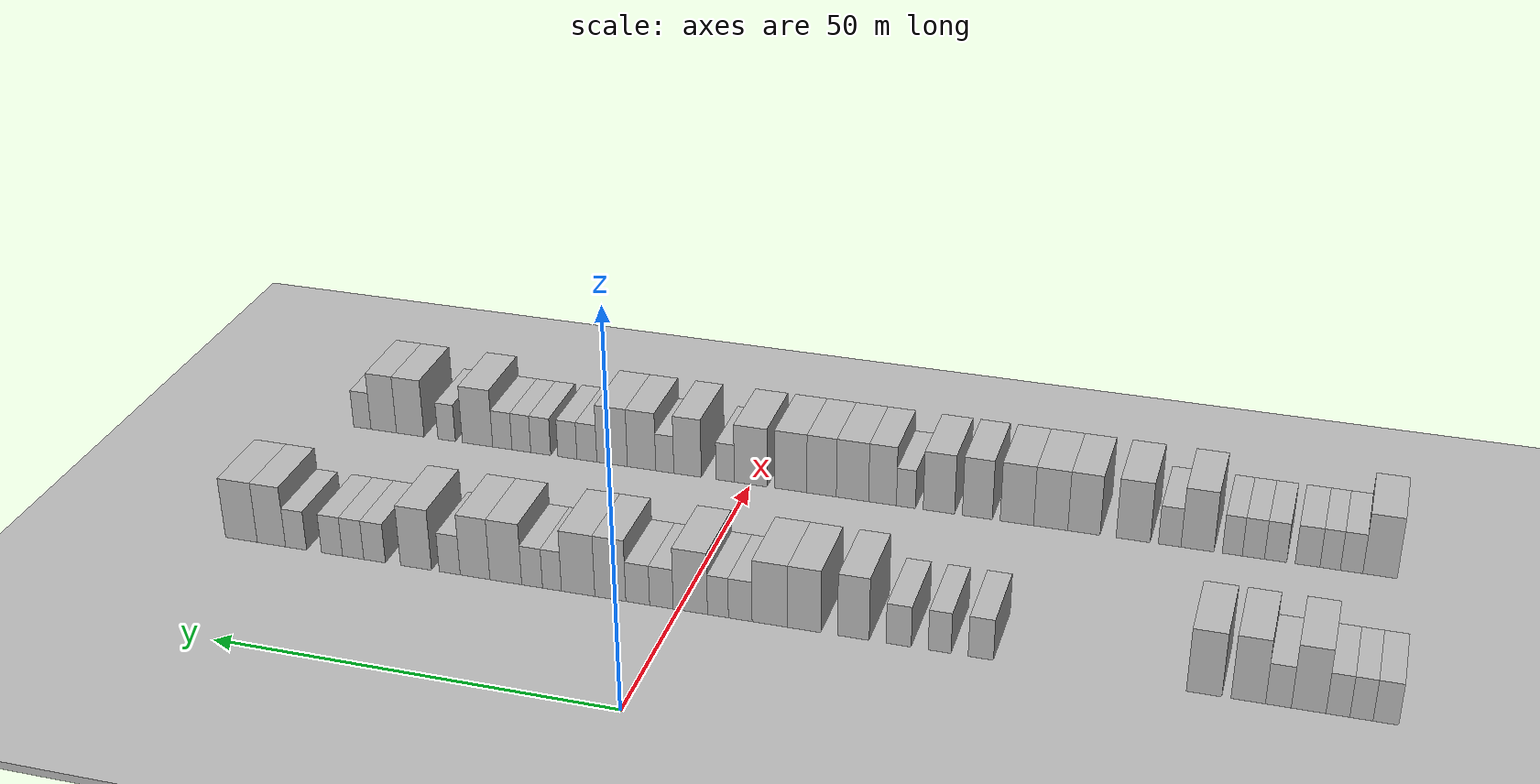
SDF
<sdf version="1.6">
 <world name="default">
  <include><name>ground_plane_1</name><uri>model://HANNAS_ground_plane</uri></include>
  <include>
   <name>ground_plane_2</name>
   <uri>model://HANNAS_ground_plane</uri>
   <pose>100 0 0  0 0 0</pose>
  </include>
  <model name="building_34">
   <static>1</static>
   <pose>25.0000 -81.9005 0 0.000000 0.000000 0.000000</pose>
   <link name="link">
    <pose>0 0 3.00 0 0 0</pose>
    <collision name="collision"><geometry><box><size>10.0000 2.7639 6.0000</size></box></geometry></collision>
    <visual name="visual">
     <cast_shadows>0</cast_shadows>
     <geometry><box><size>10.0000 2.7639 6.0000</size></box></geometry>
     <material>
      <script>
       <uri>model://HANNAS_wall/materials/scripts</uri>
       <uri>model://HANNAS_wall/materials/textures</uri>
       <name>vrc/HANNAS_wall</name>
      </script>
     </material>
    </visual>
   </link>
  </model>
  <model name="building_35">
   <static>1</static>
   <pose>25.0000 -79.2666 0 0.000000 0.000000 0.000000</pose>
   <link name="link">
    <pose>0 0 3.00 0 0 0</pose>
    <collision name="collision"><geometry><box><size>10.0000 2.5040 6.0000</size></box></geometry></collision>
    <visual name="visual">
     <cast_shadows>0</cast_shadows>
     <geometry><box><size>10.0000 2.5040 6.0000</size></box></geometry>
     <material>
      <script>
       <uri>model://HANNAS_wall/materials/scripts</uri>
       <uri>model://HANNAS_wall/materials/textures</uri>
       <name>vrc/HANNAS_wall</name>
      </script>
     </material>
    </visual>
   </link>
  </model>
  <model name="building_36">
   <static>1</static>
   <pose>25.0000 -76.7242 0 0.000000 0.000000 0.000000</pose>
   <link name="link">
    <pose>0 0 3.00 0 0 0</pose>
    <collision name="collision"><geometry><box><size>10.0000 2.5807 6.0000</size></box></geometry></collision>
    <visual name="visual">
     <cast_shadows>0</cast_shadows>
     <geometry><box><size>10.0000 2.5807 6.0000</size></box></geometry>
     <material>
      <script>
       <uri>model://HANNAS_wall/materials/scripts</uri>
       <uri>model://HANNAS_wall/materials/textures</uri>
       <name>vrc/HANNAS_wall</name>
      </script>
     </material>
    </visual>
   </link>
  </model>
  <model name="building_37">
   <static>1</static>
   <pose>25.0000 -73.5472 0 0.000000 0.000000 0.000000</pose>
   <link name="link">
    <pose>0 0 4.50 0 0 0</pose>
    <collision name="collision"><geometry><box><size>10.0000 3.7734 9.0000</size></box></geometry></collision>
    <visual name="visual">
     <cast_shadows>0</cast_shadows>
     <geometry><box><size>10.0000 3.7734 9.0000</size></box></geometry>
     <material>
      <script>
       <uri>model://HANNAS_wall/materials/scripts</uri>
       <uri>model://HANNAS_wall/materials/textures</uri>
       <name>vrc/HANNAS_wall</name>
      </script>
     </material>
    </visual>
   </link>
  </model>
  <model name="building_38">
   <static>1</static>
   <pose>25.0000 -70.2390 0 0.000000 0.000000 0.000000</pose>
   <link name="link">
    <pose>0 0 3.00 0 0 0</pose>
    <collision name="collision"><geometry><box><size>10.0000 2.8429 6.0000</size></box></geometry></collision>
    <visual name="visual">
     <cast_shadows>0</cast_shadows>
     <geometry><box><size>10.0000 2.8429 6.0000</size></box></geometry>
     <material>
      <script>
       <uri>model://HANNAS_wall/materials/scripts</uri>
       <uri>model://HANNAS_wall/materials/textures</uri>
       <name>vrc/HANNAS_wall</name>
      </script>
     </material>
    </visual>
   </link>
  </model>
  <model name="building_39">
   <static>1</static>
   <pose>25.0000 -66.9153 0 0.000000 0.000000 0.000000</pose>
   <link name="link">
    <pose>0 0 4.50 0 0 0</pose>
    <collision name="collision"><geometry><box><size>10.0000 3.8045 9.0000</size></box></geometry></collision>
    <visual name="visual">
     <cast_shadows>0</cast_shadows>
     <geometry><box><size>10.0000 3.8045 9.0000</size></box></geometry>
     <material>
      <script>
       <uri>model://HANNAS_wall/materials/scripts</uri>
       <uri>model://HANNAS_wall/materials/textures</uri>
       <name>vrc/HANNAS_wall</name>
      </script>
     </material>
    </visual>
   </link>
  </model>
  <model name="building_40">
   <static>1</static>
   <pose>25.0000 -62.0282 0 0.000000 0.000000 0.000000</pose>
   <link name="link">
    <pose>0 0 4.50 0 0 0</pose>
    <collision name="collision"><geometry><box><size>10.0000 3.9697 9.0000</size></box></geometry></collision>
    <visual name="visual">
     <cast_shadows>0</cast_shadows>
     <geometry><box><size>10.0000 3.9697 9.0000</size></box></geometry>
     <material>
      <script>
       <uri>model://HANNAS_wall/materials/scripts</uri>
       <uri>model://HANNAS_wall/materials/textures</uri>
       <name>vrc/HANNAS_wall</name>
      </script>
     </material>
    </visual>
   </link>
  </model>
  <model name="building_41">
   <static>1</static>
   <pose>25.0000 -36.5963 0 0.000000 0.000000 0.000000</pose>
   <link name="link">
    <pose>0 0 3.00 0 0 0</pose>
    <collision name="collision"><geometry><box><size>10.0000 2.9647 6.0000</size></box></geometry></collision>
    <visual name="visual">
     <cast_shadows>0</cast_shadows>
     <geometry><box><size>10.0000 2.9647 6.0000</size></box></geometry>
     <material>
      <script>
       <uri>model://HANNAS_wall/materials/scripts</uri>
       <uri>model://HANNAS_wall/materials/textures</uri>
       <name>vrc/HANNAS_wall</name>
      </script>
     </material>
    </visual>
   </link>
  </model>
  <model name="building_42">
   <static>1</static>
   <pose>25.0000 -31.7684 0 0.000000 0.000000 0.000000</pose>
   <link name="link">
    <pose>0 0 3.00 0 0 0</pose>
    <collision name="collision"><geometry><box><size>10.0000 2.6911 6.0000</size></box></geometry></collision>
    <visual name="visual">
     <cast_shadows>0</cast_shadows>
     <geometry><box><size>10.0000 2.6911 6.0000</size></box></geometry>
     <material>
      <script>
       <uri>model://HANNAS_wall/materials/scripts</uri>
       <uri>model://HANNAS_wall/materials/textures</uri>
       <name>vrc/HANNAS_wall</name>
      </script>
     </material>
    </visual>
   </link>
  </model>
  <model name="building_43">
   <static>1</static>
   <pose>25.0000 -26.9302 0 0.000000 0.000000 0.000000</pose>
   <link name="link">
    <pose>0 0 3.00 0 0 0</pose>
    <collision name="collision"><geometry><box><size>10.0000 2.9854 6.0000</size></box></geometry></collision>
    <visual name="visual">
     <cast_shadows>0</cast_shadows>
     <geometry><box><size>10.0000 2.9854 6.0000</size></box></geometry>
     <material>
      <script>
       <uri>model://HANNAS_wall/materials/scripts</uri>
       <uri>model://HANNAS_wall/materials/textures</uri>
       <name>vrc/HANNAS_wall</name>
      </script>
     </material>
    </visual>
   </link>
  </model>
  <model name="building_44">
   <static>1</static>
   <pose>25.0000 -21.5450 0 0.000000 0.000000 0.000000</pose>
   <link name="link">
    <pose>0 0 4.50 0 0 0</pose>
    <collision name="collision"><geometry><box><size>10.0000 3.7849 9.0000</size></box></geometry></collision>
    <visual name="visual">
     <cast_shadows>0</cast_shadows>
     <geometry><box><size>10.0000 3.7849 9.0000</size></box></geometry>
     <material>
      <script>
       <uri>model://HANNAS_wall/materials/scripts</uri>
       <uri>model://HANNAS_wall/materials/textures</uri>
       <name>vrc/HANNAS_wall</name>
      </script>
     </material>
    </visual>
   </link>
  </model>
  <model name="building_45">
   <static>1</static>
   <pose>25.0000 -15.6353 0 0.000000 0.000000 0.000000</pose>
   <link name="link">
    <pose>0 0 4.50 0 0 0</pose>
    <collision name="collision"><geometry><box><size>10.0000 4.0346 9.0000</size></box></geometry></collision>
    <visual name="visual">
     <cast_shadows>0</cast_shadows>
     <geometry><box><size>10.0000 4.0346 9.0000</size></box></geometry>
     <material>
      <script>
       <uri>model://HANNAS_wall/materials/scripts</uri>
       <uri>model://HANNAS_wall/materials/textures</uri>
       <name>vrc/HANNAS_wall</name>
      </script>
     </material>
    </visual>
   </link>
  </model>
  <model name="building_46">
   <static>1</static>
   <pose>25.0000 -11.4569 0 0.000000 0.000000 0.000000</pose>
   <link name="link">
    <pose>0 0 4.50 0 0 0</pose>
    <collision name="collision"><geometry><box><size>10.0000 4.3222 9.0000</size></box></geometry></collision>
    <visual name="visual">
     <cast_shadows>0</cast_shadows>
     <geometry><box><size>10.0000 4.3222 9.0000</size></box></geometry>
     <material>
      <script>
       <uri>model://HANNAS_wall/materials/scripts</uri>
       <uri>model://HANNAS_wall/materials/textures</uri>
       <name>vrc/HANNAS_wall</name>
      </script>
     </material>
    </visual>
   </link>
  </model>
  <model name="building_47">
   <static>1</static>
   <pose>25.0000 -7.8419 0 0.000000 0.000000 0.000000</pose>
   <link name="link">
    <pose>0 0 3.00 0 0 0</pose>
    <collision name="collision"><geometry><box><size>10.0000 2.9079 6.0000</size></box></geometry></collision>
    <visual name="visual">
     <cast_shadows>0</cast_shadows>
     <geometry><box><size>10.0000 2.9079 6.0000</size></box></geometry>
     <material>
      <script>
       <uri>model://HANNAS_wall/materials/scripts</uri>
       <uri>model://HANNAS_wall/materials/textures</uri>
       <name>vrc/HANNAS_wall</name>
      </script>
     </material>
    </visual>
   </link>
  </model>
  <model name="building_48">
   <static>1</static>
   <pose>25.0000 -5.0997 0 0.000000 0.000000 0.000000</pose>
   <link name="link">
    <pose>0 0 3.00 0 0 0</pose>
    <collision name="collision"><geometry><box><size>10.0000 2.5764 6.0000</size></box></geometry></collision>
    <visual name="visual">
     <cast_shadows>0</cast_shadows>
     <geometry><box><size>10.0000 2.5764 6.0000</size></box></geometry>
     <material>
      <script>
       <uri>model://HANNAS_wall/materials/scripts</uri>
       <uri>model://HANNAS_wall/materials/textures</uri>
       <name>vrc/HANNAS_wall</name>
      </script>
     </material>
    </visual>
   </link>
  </model>
  <model name="building_49">
   <static>1</static>
   <pose>25.0000 -1.6873 0 0.000000 0.000000 0.000000</pose>
   <link name="link">
    <pose>0 0 4.50 0 0 0</pose>
    <collision name="collision"><geometry><box><size>10.0000 4.2484 9.0000</size></box></geometry></collision>
    <visual name="visual">
     <cast_shadows>0</cast_shadows>
     <geometry><box><size>10.0000 4.2484 9.0000</size></box></geometry>
     <material>
      <script>
       <uri>model://HANNAS_wall/materials/scripts</uri>
       <uri>model://HANNAS_wall/materials/textures</uri>
       <name>vrc/HANNAS_wall</name>
      </script>
     </material>
    </visual>
   </link>
  </model>
  <model name="building_50">
   <static>1</static>
   <pose>25.0000 1.9094 0 0.000000 0.000000 0.000000</pose>
   <link name="link">
    <pose>0 0 3.00 0 0 0</pose>
    <collision name="collision"><geometry><box><size>10.0000 2.9451 6.0000</size></box></geometry></collision>
    <visual name="visual">
     <cast_shadows>0</cast_shadows>
     <geometry><box><size>10.0000 2.9451 6.0000</size></box></geometry>
     <material>
      <script>
       <uri>model://HANNAS_wall/materials/scripts</uri>
       <uri>model://HANNAS_wall/materials/textures</uri>
       <name>vrc/HANNAS_wall</name>
      </script>
     </material>
    </visual>
   </link>
  </model>
  <model name="building_51">
   <static>1</static>
   <pose>25.0000 4.8736 0 0.000000 0.000000 0.000000</pose>
   <link name="link">
    <pose>0 0 3.00 0 0 0</pose>
    <collision name="collision"><geometry><box><size>10.0000 2.9833 6.0000</size></box></geometry></collision>
    <visual name="visual">
     <cast_shadows>0</cast_shadows>
     <geometry><box><size>10.0000 2.9833 6.0000</size></box></geometry>
     <material>
      <script>
       <uri>model://HANNAS_wall/materials/scripts</uri>
       <uri>model://HANNAS_wall/materials/textures</uri>
       <name>vrc/HANNAS_wall</name>
      </script>
     </material>
    </visual>
   </link>
  </model>
  <model name="building_52">
   <static>1</static>
   <pose>25.0000 8.3156 0 0.000000 0.000000 0.000000</pose>
   <link name="link">
    <pose>0 0 4.50 0 0 0</pose>
    <collision name="collision"><geometry><box><size>10.0000 3.9007 9.0000</size></box></geometry></collision>
    <visual name="visual">
     <cast_shadows>0</cast_shadows>
     <geometry><box><size>10.0000 3.9007 9.0000</size></box></geometry>
     <material>
      <script>
       <uri>model://HANNAS_wall/materials/scripts</uri>
       <uri>model://HANNAS_wall/materials/textures</uri>
       <name>vrc/HANNAS_wall</name>
      </script>
     </material>
    </visual>
   </link>
  </model>
  <model name="building_53">
   <static>1</static>
   <pose>25.0000 12.3858 0 0.000000 0.000000 0.000000</pose>
   <link name="link">
    <pose>0 0 4.50 0 0 0</pose>
    <collision name="collision"><geometry><box><size>10.0000 4.2398 9.0000</size></box></geometry></collision>
    <visual name="visual">
     <cast_shadows>0</cast_shadows>
     <geometry><box><size>10.0000 4.2398 9.0000</size></box></geometry>
     <material>
      <script>
       <uri>model://HANNAS_wall/materials/scripts</uri>
       <uri>model://HANNAS_wall/materials/textures</uri>
       <name>vrc/HANNAS_wall</name>
      </script>
     </material>
    </visual>
   </link>
  </model>
  <model name="building_54">
   <static>1</static>
   <pose>25.0000 15.7181 0 0.000000 0.000000 0.000000</pose>
   <link name="link">
    <pose>0 0 3.00 0 0 0</pose>
    <collision name="collision"><geometry><box><size>10.0000 2.4247 6.0000</size></box></geometry></collision>
    <visual name="visual">
     <cast_shadows>0</cast_shadows>
     <geometry><box><size>10.0000 2.4247 6.0000</size></box></geometry>
     <material>
      <script>
       <uri>model://HANNAS_wall/materials/scripts</uri>
       <uri>model://HANNAS_wall/materials/textures</uri>
       <name>vrc/HANNAS_wall</name>
      </script>
     </material>
    </visual>
   </link>
  </model>
  <model name="building_55">
   <static>1</static>
   <pose>25.0000 18.2639 0 0.000000 0.000000 0.000000</pose>
   <link name="link">
    <pose>0 0 3.00 0 0 0</pose>
    <collision name="collision"><geometry><box><size>10.0000 2.6669 6.0000</size></box></geometry></collision>
    <visual name="visual">
     <cast_shadows>0</cast_shadows>
     <geometry><box><size>10.0000 2.6669 6.0000</size></box></geometry>
     <material>
      <script>
       <uri>model://HANNAS_wall/materials/scripts</uri>
       <uri>model://HANNAS_wall/materials/textures</uri>
       <name>vrc/HANNAS_wall</name>
      </script>
     </material>
    </visual>
   </link>
  </model>
  <model name="building_56">
   <static>1</static>
   <pose>25.0000 21.6509 0 0.000000 0.000000 0.000000</pose>
   <link name="link">
    <pose>0 0 4.50 0 0 0</pose>
    <collision name="collision"><geometry><box><size>10.0000 4.1072 9.0000</size></box></geometry></collision>
    <visual name="visual">
     <cast_shadows>0</cast_shadows>
     <geometry><box><size>10.0000 4.1072 9.0000</size></box></geometry>
     <material>
      <script>
       <uri>model://HANNAS_wall/materials/scripts</uri>
       <uri>model://HANNAS_wall/materials/textures</uri>
       <name>vrc/HANNAS_wall</name>
      </script>
     </material>
    </visual>
   </link>
  </model>
  <model name="building_57">
   <static>1</static>
   <pose>25.0000 25.6340 0 0.000000 0.000000 0.000000</pose>
   <link name="link">
    <pose>0 0 4.50 0 0 0</pose>
    <collision name="collision"><geometry><box><size>10.0000 3.8590 9.0000</size></box></geometry></collision>
    <visual name="visual">
     <cast_shadows>0</cast_shadows>
     <geometry><box><size>10.0000 3.8590 9.0000</size></box></geometry>
     <material>
      <script>
       <uri>model://HANNAS_wall/materials/scripts</uri>
       <uri>model://HANNAS_wall/materials/textures</uri>
       <name>vrc/HANNAS_wall</name>
      </script>
     </material>
    </visual>
   </link>
  </model>
  <model name="building_58">
   <static>1</static>
   <pose>25.0000 28.9317 0 0.000000 0.000000 0.000000</pose>
   <link name="link">
    <pose>0 0 3.00 0 0 0</pose>
    <collision name="collision"><geometry><box><size>10.0000 2.7363 6.0000</size></box></geometry></collision>
    <visual name="visual">
     <cast_shadows>0</cast_shadows>
     <geometry><box><size>10.0000 2.7363 6.0000</size></box></geometry>
     <material>
      <script>
       <uri>model://HANNAS_wall/materials/scripts</uri>
       <uri>model://HANNAS_wall/materials/textures</uri>
       <name>vrc/HANNAS_wall</name>
      </script>
     </material>
    </visual>
   </link>
  </model>
  <model name="building_59">
   <static>1</static>
   <pose>25.0000 33.3434 0 0.000000 0.000000 0.000000</pose>
   <link name="link">
    <pose>0 0 4.50 0 0 0</pose>
    <collision name="collision"><geometry><box><size>10.0000 4.0870 9.0000</size></box></geometry></collision>
    <visual name="visual">
     <cast_shadows>0</cast_shadows>
     <geometry><box><size>10.0000 4.0870 9.0000</size></box></geometry>
     <material>
      <script>
       <uri>model://HANNAS_wall/materials/scripts</uri>
       <uri>model://HANNAS_wall/materials/textures</uri>
       <name>vrc/HANNAS_wall</name>
      </script>
     </material>
    </visual>
   </link>
  </model>
  <model name="building_60">
   <static>1</static>
   <pose>25.0000 38.8239 0 0.000000 0.000000 0.000000</pose>
   <link name="link">
    <pose>0 0 3.00 0 0 0</pose>
    <collision name="collision"><geometry><box><size>10.0000 2.8741 6.0000</size></box></geometry></collision>
    <visual name="visual">
     <cast_shadows>0</cast_shadows>
     <geometry><box><size>10.0000 2.8741 6.0000</size></box></geometry>
     <material>
      <script>
       <uri>model://HANNAS_wall/materials/scripts</uri>
       <uri>model://HANNAS_wall/materials/textures</uri>
       <name>vrc/HANNAS_wall</name>
      </script>
     </material>
    </visual>
   </link>
  </model>
  <model name="building_61">
   <static>1</static>
   <pose>25.0000 41.6775 0 0.000000 0.000000 0.000000</pose>
   <link name="link">
    <pose>0 0 3.00 0 0 0</pose>
    <collision name="collision"><geometry><box><size>10.0000 2.8331 6.0000</size></box></geometry></collision>
    <visual name="visual">
     <cast_shadows>0</cast_shadows>
     <geometry><box><size>10.0000 2.8331 6.0000</size></box></geometry>
     <material>
      <script>
       <uri>model://HANNAS_wall/materials/scripts</uri>
       <uri>model://HANNAS_wall/materials/textures</uri>
       <name>vrc/HANNAS_wall</name>
      </script>
     </material>
    </visual>
   </link>
  </model>
  <model name="building_62">
   <static>1</static>
   <pose>25.0000 44.5064 0 0.000000 0.000000 0.000000</pose>
   <link name="link">
    <pose>0 0 3.00 0 0 0</pose>
    <collision name="collision"><geometry><box><size>10.0000 2.8246 6.0000</size></box></geometry></collision>
    <visual name="visual">
     <cast_shadows>0</cast_shadows>
     <geometry><box><size>10.0000 2.8246 6.0000</size></box></geometry>
     <material>
      <script>
       <uri>model://HANNAS_wall/materials/scripts</uri>
       <uri>model://HANNAS_wall/materials/textures</uri>
       <name>vrc/HANNAS_wall</name>
      </script>
     </material>
    </visual>
   </link>
  </model>
  <model name="building_63">
   <static>1</static>
   <pose>25.0000 49.3400 0 0.000000 0.000000 0.000000</pose>
   <link name="link">
    <pose>0 0 3.00 0 0 0</pose>
    <collision name="collision"><geometry><box><size>10.0000 2.8425 6.0000</size></box></geometry></collision>
    <visual name="visual">
     <cast_shadows>0</cast_shadows>
     <geometry><box><size>10.0000 2.8425 6.0000</size></box></geometry>
     <material>
      <script>
       <uri>model://HANNAS_wall/materials/scripts</uri>
       <uri>model://HANNAS_wall/materials/textures</uri>
       <name>vrc/HANNAS_wall</name>
      </script>
     </material>
    </visual>
   </link>
  </model>
  <model name="building_64">
   <static>1</static>
   <pose>25.0000 52.6795 0 0.000000 0.000000 0.000000</pose>
   <link name="link">
    <pose>0 0 4.50 0 0 0</pose>
    <collision name="collision"><geometry><box><size>10.0000 3.8364 9.0000</size></box></geometry></collision>
    <visual name="visual">
     <cast_shadows>0</cast_shadows>
     <geometry><box><size>10.0000 3.8364 9.0000</size></box></geometry>
     <material>
      <script>
       <uri>model://HANNAS_wall/materials/scripts</uri>
       <uri>model://HANNAS_wall/materials/textures</uri>
       <name>vrc/HANNAS_wall</name>
      </script>
     </material>
    </visual>
   </link>
  </model>
  <model name="building_65">
   <static>1</static>
   <pose>25.0000 56.7754 0 0.000000 0.000000 0.000000</pose>
   <link name="link">
    <pose>0 0 4.50 0 0 0</pose>
    <collision name="collision"><geometry><box><size>10.0000 4.3555 9.0000</size></box></geometry></collision>
    <visual name="visual">
     <cast_shadows>0</cast_shadows>
     <geometry><box><size>10.0000 4.3555 9.0000</size></box></geometry>
     <material>
      <script>
       <uri>model://HANNAS_wall/materials/scripts</uri>
       <uri>model://HANNAS_wall/materials/textures</uri>
       <name>vrc/HANNAS_wall</name>
      </script>
     </material>
    </visual>
   </link>
  </model>
  <model name="building_131">
   <static>1</static>
   <pose>55.0000 -79.6009 0 0.000000 0.000000 0.000000</pose>
   <link name="link">
    <pose>0 0 4.50 0 0 0</pose>
    <collision name="collision"><geometry><box><size>10.0000 4.0662 9.0000</size></box></geometry></collision>
    <visual name="visual">
     <cast_shadows>0</cast_shadows>
     <geometry><box><size>10.0000 4.0662 9.0000</size></box></geometry>
     <material>
      <script>
       <uri>model://HANNAS_wall/materials/scripts</uri>
       <uri>model://HANNAS_wall/materials/textures</uri>
       <name>vrc/HANNAS_wall</name>
      </script>
     </material>
    </visual>
   </link>
  </model>
  <model name="building_132">
   <static>1</static>
   <pose>55.0000 -76.2297 0 0.000000 0.000000 0.000000</pose>
   <link name="link">
    <pose>0 0 3.00 0 0 0</pose>
    <collision name="collision"><geometry><box><size>10.0000 2.6760 6.0000</size></box></geometry></collision>
    <visual name="visual">
     <cast_shadows>0</cast_shadows>
     <geometry><box><size>10.0000 2.6760 6.0000</size></box></geometry>
     <material>
      <script>
       <uri>model://HANNAS_wall/materials/scripts</uri>
       <uri>model://HANNAS_wall/materials/textures</uri>
       <name>vrc/HANNAS_wall</name>
      </script>
     </material>
    </visual>
   </link>
  </model>
  <model name="building_133">
   <static>1</static>
   <pose>55.0000 -73.6705 0 0.000000 0.000000 0.000000</pose>
   <link name="link">
    <pose>0 0 3.00 0 0 0</pose>
    <collision name="collision"><geometry><box><size>10.0000 2.4424 6.0000</size></box></geometry></collision>
    <visual name="visual">
     <cast_shadows>0</cast_shadows>
     <geometry><box><size>10.0000 2.4424 6.0000</size></box></geometry>
     <material>
      <script>
       <uri>model://HANNAS_wall/materials/scripts</uri>
       <uri>model://HANNAS_wall/materials/textures</uri>
       <name>vrc/HANNAS_wall</name>
      </script>
     </material>
    </visual>
   </link>
  </model>
  <model name="building_134">
   <static>1</static>
   <pose>55.0000 -70.9628 0 0.000000 0.000000 0.000000</pose>
   <link name="link">
    <pose>0 0 3.00 0 0 0</pose>
    <collision name="collision"><geometry><box><size>10.0000 2.9731 6.0000</size></box></geometry></collision>
    <visual name="visual">
     <cast_shadows>0</cast_shadows>
     <geometry><box><size>10.0000 2.9731 6.0000</size></box></geometry>
     <material>
      <script>
       <uri>model://HANNAS_wall/materials/scripts</uri>
       <uri>model://HANNAS_wall/materials/textures</uri>
       <name>vrc/HANNAS_wall</name>
      </script>
     </material>
    </visual>
   </link>
  </model>
  <model name="building_135">
   <static>1</static>
   <pose>55.0000 -67.1325 0 0.000000 0.000000 0.000000</pose>
   <link name="link">
    <pose>0 0 3.00 0 0 0</pose>
    <collision name="collision"><geometry><box><size>10.0000 2.6875 6.0000</size></box></geometry></collision>
    <visual name="visual">
     <cast_shadows>0</cast_shadows>
     <geometry><box><size>10.0000 2.6875 6.0000</size></box></geometry>
     <material>
      <script>
       <uri>model://HANNAS_wall/materials/scripts</uri>
       <uri>model://HANNAS_wall/materials/textures</uri>
       <name>vrc/HANNAS_wall</name>
      </script>
     </material>
    </visual>
   </link>
  </model>
  <model name="building_136">
   <static>1</static>
   <pose>55.0000 -64.4409 0 0.000000 0.000000 0.000000</pose>
   <link name="link">
    <pose>0 0 3.00 0 0 0</pose>
    <collision name="collision"><geometry><box><size>10.0000 2.6957 6.0000</size></box></geometry></collision>
    <visual name="visual">
     <cast_shadows>0</cast_shadows>
     <geometry><box><size>10.0000 2.6957 6.0000</size></box></geometry>
     <material>
      <script>
       <uri>model://HANNAS_wall/materials/scripts</uri>
       <uri>model://HANNAS_wall/materials/textures</uri>
       <name>vrc/HANNAS_wall</name>
      </script>
     </material>
    </visual>
   </link>
  </model>
  <model name="building_137">
   <static>1</static>
   <pose>55.0000 -61.8707 0 0.000000 0.000000 0.000000</pose>
   <link name="link">
    <pose>0 0 3.00 0 0 0</pose>
    <collision name="collision"><geometry><box><size>10.0000 2.4447 6.0000</size></box></geometry></collision>
    <visual name="visual">
     <cast_shadows>0</cast_shadows>
     <geometry><box><size>10.0000 2.4447 6.0000</size></box></geometry>
     <material>
      <script>
       <uri>model://HANNAS_wall/materials/scripts</uri>
       <uri>model://HANNAS_wall/materials/textures</uri>
       <name>vrc/HANNAS_wall</name>
      </script>
     </material>
    </visual>
   </link>
  </model>
  <model name="building_138">
   <static>1</static>
   <pose>55.0000 -57.6155 0 0.000000 0.000000 0.000000</pose>
   <link name="link">
    <pose>0 0 4.50 0 0 0</pose>
    <collision name="collision"><geometry><box><size>10.0000 4.0658 9.0000</size></box></geometry></collision>
    <visual name="visual">
     <cast_shadows>0</cast_shadows>
     <geometry><box><size>10.0000 4.0658 9.0000</size></box></geometry>
     <material>
      <script>
       <uri>model://HANNAS_wall/materials/scripts</uri>
       <uri>model://HANNAS_wall/materials/textures</uri>
       <name>vrc/HANNAS_wall</name>
      </script>
     </material>
    </visual>
   </link>
  </model>
  <model name="building_139">
   <static>1</static>
   <pose>55.0000 -54.1896 0 0.000000 0.000000 0.000000</pose>
   <link name="link">
    <pose>0 0 3.00 0 0 0</pose>
    <collision name="collision"><geometry><box><size>10.0000 2.7860 6.0000</size></box></geometry></collision>
    <visual name="visual">
     <cast_shadows>0</cast_shadows>
     <geometry><box><size>10.0000 2.7860 6.0000</size></box></geometry>
     <material>
      <script>
       <uri>model://HANNAS_wall/materials/scripts</uri>
       <uri>model://HANNAS_wall/materials/textures</uri>
       <name>vrc/HANNAS_wall</name>
      </script>
     </material>
    </visual>
   </link>
  </model>
  <model name="building_140">
   <static>1</static>
   <pose>55.0000 -49.6726 0 0.000000 0.000000 0.000000</pose>
   <link name="link">
    <pose>0 0 4.50 0 0 0</pose>
    <collision name="collision"><geometry><box><size>10.0000 4.2480 9.0000</size></box></geometry></collision>
    <visual name="visual">
     <cast_shadows>0</cast_shadows>
     <geometry><box><size>10.0000 4.2480 9.0000</size></box></geometry>
     <material>
      <script>
       <uri>model://HANNAS_wall/materials/scripts</uri>
       <uri>model://HANNAS_wall/materials/textures</uri>
       <name>vrc/HANNAS_wall</name>
      </script>
     </material>
    </visual>
   </link>
  </model>
  <model name="building_141">
   <static>1</static>
   <pose>55.0000 -43.5211 0 0.000000 0.000000 0.000000</pose>
   <link name="link">
    <pose>0 0 4.50 0 0 0</pose>
    <collision name="collision"><geometry><box><size>10.0000 4.0550 9.0000</size></box></geometry></collision>
    <visual name="visual">
     <cast_shadows>0</cast_shadows>
     <geometry><box><size>10.0000 4.0550 9.0000</size></box></geometry>
     <material>
      <script>
       <uri>model://HANNAS_wall/materials/scripts</uri>
       <uri>model://HANNAS_wall/materials/textures</uri>
       <name>vrc/HANNAS_wall</name>
      </script>
     </material>
    </visual>
   </link>
  </model>
  <model name="building_142">
   <static>1</static>
   <pose>55.0000 -39.3276 0 0.000000 0.000000 0.000000</pose>
   <link name="link">
    <pose>0 0 4.50 0 0 0</pose>
    <collision name="collision"><geometry><box><size>10.0000 4.3319 9.0000</size></box></geometry></collision>
    <visual name="visual">
     <cast_shadows>0</cast_shadows>
     <geometry><box><size>10.0000 4.3319 9.0000</size></box></geometry>
     <material>
      <script>
       <uri>model://HANNAS_wall/materials/scripts</uri>
       <uri>model://HANNAS_wall/materials/textures</uri>
       <name>vrc/HANNAS_wall</name>
      </script>
     </material>
    </visual>
   </link>
  </model>
  <model name="building_143">
   <static>1</static>
   <pose>55.0000 -35.0358 0 0.000000 0.000000 0.000000</pose>
   <link name="link">
    <pose>0 0 4.50 0 0 0</pose>
    <collision name="collision"><geometry><box><size>10.0000 4.2517 9.0000</size></box></geometry></collision>
    <visual name="visual">
     <cast_shadows>0</cast_shadows>
     <geometry><box><size>10.0000 4.2517 9.0000</size></box></geometry>
     <material>
      <script>
       <uri>model://HANNAS_wall/materials/scripts</uri>
       <uri>model://HANNAS_wall/materials/textures</uri>
       <name>vrc/HANNAS_wall</name>
      </script>
     </material>
    </visual>
   </link>
  </model>
  <model name="building_144">
   <static>1</static>
   <pose>55.0000 -29.9857 0 0.000000 0.000000 0.000000</pose>
   <link name="link">
    <pose>0 0 4.50 0 0 0</pose>
    <collision name="collision"><geometry><box><size>10.0000 3.8485 9.0000</size></box></geometry></collision>
    <visual name="visual">
     <cast_shadows>0</cast_shadows>
     <geometry><box><size>10.0000 3.8485 9.0000</size></box></geometry>
     <material>
      <script>
       <uri>model://HANNAS_wall/materials/scripts</uri>
       <uri>model://HANNAS_wall/materials/textures</uri>
       <name>vrc/HANNAS_wall</name>
      </script>
     </material>
    </visual>
   </link>
  </model>
  <model name="building_145">
   <static>1</static>
   <pose>55.0000 -25.0302 0 0.000000 0.000000 0.000000</pose>
   <link name="link">
    <pose>0 0 4.50 0 0 0</pose>
    <collision name="collision"><geometry><box><size>10.0000 4.0625 9.0000</size></box></geometry></collision>
    <visual name="visual">
     <cast_shadows>0</cast_shadows>
     <geometry><box><size>10.0000 4.0625 9.0000</size></box></geometry>
     <material>
      <script>
       <uri>model://HANNAS_wall/materials/scripts</uri>
       <uri>model://HANNAS_wall/materials/textures</uri>
       <name>vrc/HANNAS_wall</name>
      </script>
     </material>
    </visual>
   </link>
  </model>
  <model name="building_146">
   <static>1</static>
   <pose>55.0000 -20.7557 0 0.000000 0.000000 0.000000</pose>
   <link name="link">
    <pose>0 0 3.00 0 0 0</pose>
    <collision name="collision"><geometry><box><size>10.0000 2.4864 6.0000</size></box></geometry></collision>
    <visual name="visual">
     <cast_shadows>0</cast_shadows>
     <geometry><box><size>10.0000 2.4864 6.0000</size></box></geometry>
     <material>
      <script>
       <uri>model://HANNAS_wall/materials/scripts</uri>
       <uri>model://HANNAS_wall/materials/textures</uri>
       <name>vrc/HANNAS_wall</name>
      </script>
     </material>
    </visual>
   </link>
  </model>
  <model name="building_147">
   <static>1</static>
   <pose>55.0000 -17.6902 0 0.000000 0.000000 0.000000</pose>
   <link name="link">
    <pose>0 0 4.50 0 0 0</pose>
    <collision name="collision"><geometry><box><size>10.0000 3.6447 9.0000</size></box></geometry></collision>
    <visual name="visual">
     <cast_shadows>0</cast_shadows>
     <geometry><box><size>10.0000 3.6447 9.0000</size></box></geometry>
     <material>
      <script>
       <uri>model://HANNAS_wall/materials/scripts</uri>
       <uri>model://HANNAS_wall/materials/textures</uri>
       <name>vrc/HANNAS_wall</name>
      </script>
     </material>
    </visual>
   </link>
  </model>
  <model name="building_148">
   <static>1</static>
   <pose>55.0000 -13.7422 0 0.000000 0.000000 0.000000</pose>
   <link name="link">
    <pose>0 0 4.50 0 0 0</pose>
    <collision name="collision"><geometry><box><size>10.0000 4.2513 9.0000</size></box></geometry></collision>
    <visual name="visual">
     <cast_shadows>0</cast_shadows>
     <geometry><box><size>10.0000 4.2513 9.0000</size></box></geometry>
     <material>
      <script>
       <uri>model://HANNAS_wall/materials/scripts</uri>
       <uri>model://HANNAS_wall/materials/textures</uri>
       <name>vrc/HANNAS_wall</name>
      </script>
     </material>
    </visual>
   </link>
  </model>
  <model name="building_149">
   <static>1</static>
   <pose>55.0000 -9.6614 0 0.000000 0.000000 0.000000</pose>
   <link name="link">
    <pose>0 0 4.50 0 0 0</pose>
    <collision name="collision"><geometry><box><size>10.0000 3.9103 9.0000</size></box></geometry></collision>
    <visual name="visual">
     <cast_shadows>0</cast_shadows>
     <geometry><box><size>10.0000 3.9103 9.0000</size></box></geometry>
     <material>
      <script>
       <uri>model://HANNAS_wall/materials/scripts</uri>
       <uri>model://HANNAS_wall/materials/textures</uri>
       <name>vrc/HANNAS_wall</name>
      </script>
     </material>
    </visual>
   </link>
  </model>
  <model name="building_150">
   <static>1</static>
   <pose>55.0000 -5.5585 0 0.000000 0.000000 0.000000</pose>
   <link name="link">
    <pose>0 0 4.50 0 0 0</pose>
    <collision name="collision"><geometry><box><size>10.0000 4.2955 9.0000</size></box></geometry></collision>
    <visual name="visual">
     <cast_shadows>0</cast_shadows>
     <geometry><box><size>10.0000 4.2955 9.0000</size></box></geometry>
     <material>
      <script>
       <uri>model://HANNAS_wall/materials/scripts</uri>
       <uri>model://HANNAS_wall/materials/textures</uri>
       <name>vrc/HANNAS_wall</name>
      </script>
     </material>
    </visual>
   </link>
  </model>
  <model name="building_151">
   <static>1</static>
   <pose>55.0000 -0.1963 0 0.000000 0.000000 0.000000</pose>
   <link name="link">
    <pose>0 0 4.50 0 0 0</pose>
    <collision name="collision"><geometry><box><size>10.0000 4.4288 9.0000</size></box></geometry></collision>
    <visual name="visual">
     <cast_shadows>0</cast_shadows>
     <geometry><box><size>10.0000 4.4288 9.0000</size></box></geometry>
     <material>
      <script>
       <uri>model://HANNAS_wall/materials/scripts</uri>
       <uri>model://HANNAS_wall/materials/textures</uri>
       <name>vrc/HANNAS_wall</name>
      </script>
     </material>
    </visual>
   </link>
  </model>
  <model name="building_152">
   <static>1</static>
   <pose>55.0000 3.2520 0 0.000000 0.000000 0.000000</pose>
   <link name="link">
    <pose>0 0 3.00 0 0 0</pose>
    <collision name="collision"><geometry><box><size>10.0000 2.4678 6.0000</size></box></geometry></collision>
    <visual name="visual">
     <cast_shadows>0</cast_shadows>
     <geometry><box><size>10.0000 2.4678 6.0000</size></box></geometry>
     <material>
      <script>
       <uri>model://HANNAS_wall/materials/scripts</uri>
       <uri>model://HANNAS_wall/materials/textures</uri>
       <name>vrc/HANNAS_wall</name>
      </script>
     </material>
    </visual>
   </link>
  </model>
  <model name="building_153">
   <static>1</static>
   <pose>55.0000 8.3651 0 0.000000 0.000000 0.000000</pose>
   <link name="link">
    <pose>0 0 4.50 0 0 0</pose>
    <collision name="collision"><geometry><box><size>10.0000 3.7586 9.0000</size></box></geometry></collision>
    <visual name="visual">
     <cast_shadows>0</cast_shadows>
     <geometry><box><size>10.0000 3.7586 9.0000</size></box></geometry>
     <material>
      <script>
       <uri>model://HANNAS_wall/materials/scripts</uri>
       <uri>model://HANNAS_wall/materials/textures</uri>
       <name>vrc/HANNAS_wall</name>
      </script>
     </material>
    </visual>
   </link>
  </model>
  <model name="building_154">
   <static>1</static>
   <pose>55.0000 11.4801 0 0.000000 0.000000 0.000000</pose>
   <link name="link">
    <pose>0 0 3.00 0 0 0</pose>
    <collision name="collision"><geometry><box><size>10.0000 2.4714 6.0000</size></box></geometry></collision>
    <visual name="visual">
     <cast_shadows>0</cast_shadows>
     <geometry><box><size>10.0000 2.4714 6.0000</size></box></geometry>
     <material>
      <script>
       <uri>model://HANNAS_wall/materials/scripts</uri>
       <uri>model://HANNAS_wall/materials/textures</uri>
       <name>vrc/HANNAS_wall</name>
      </script>
     </material>
    </visual>
   </link>
  </model>
  <model name="building_155">
   <static>1</static>
   <pose>55.0000 14.6720 0 0.000000 0.000000 0.000000</pose>
   <link name="link">
    <pose>0 0 4.50 0 0 0</pose>
    <collision name="collision"><geometry><box><size>10.0000 3.9122 9.0000</size></box></geometry></collision>
    <visual name="visual">
     <cast_shadows>0</cast_shadows>
     <geometry><box><size>10.0000 3.9122 9.0000</size></box></geometry>
     <material>
      <script>
       <uri>model://HANNAS_wall/materials/scripts</uri>
       <uri>model://HANNAS_wall/materials/textures</uri>
       <name>vrc/HANNAS_wall</name>
      </script>
     </material>
    </visual>
   </link>
  </model>
  <model name="building_156">
   <static>1</static>
   <pose>55.0000 18.7456 0 0.000000 0.000000 0.000000</pose>
   <link name="link">
    <pose>0 0 4.50 0 0 0</pose>
    <collision name="collision"><geometry><box><size>10.0000 4.2352 9.0000</size></box></geometry></collision>
    <visual name="visual">
     <cast_shadows>0</cast_shadows>
     <geometry><box><size>10.0000 4.2352 9.0000</size></box></geometry>
     <material>
      <script>
       <uri>model://HANNAS_wall/materials/scripts</uri>
       <uri>model://HANNAS_wall/materials/textures</uri>
       <name>vrc/HANNAS_wall</name>
      </script>
     </material>
    </visual>
   </link>
  </model>
  <model name="building_157">
   <static>1</static>
   <pose>55.0000 22.2513 0 0.000000 0.000000 0.000000</pose>
   <link name="link">
    <pose>0 0 3.00 0 0 0</pose>
    <collision name="collision"><geometry><box><size>10.0000 2.7761 6.0000</size></box></geometry></collision>
    <visual name="visual">
     <cast_shadows>0</cast_shadows>
     <geometry><box><size>10.0000 2.7761 6.0000</size></box></geometry>
     <material>
      <script>
       <uri>model://HANNAS_wall/materials/scripts</uri>
       <uri>model://HANNAS_wall/materials/textures</uri>
       <name>vrc/HANNAS_wall</name>
      </script>
     </material>
    </visual>
   </link>
  </model>
  <model name="building_158">
   <static>1</static>
   <pose>55.0000 24.9798 0 0.000000 0.000000 0.000000</pose>
   <link name="link">
    <pose>0 0 3.00 0 0 0</pose>
    <collision name="collision"><geometry><box><size>10.0000 2.6808 6.0000</size></box></geometry></collision>
    <visual name="visual">
     <cast_shadows>0</cast_shadows>
     <geometry><box><size>10.0000 2.6808 6.0000</size></box></geometry>
     <material>
      <script>
       <uri>model://HANNAS_wall/materials/scripts</uri>
       <uri>model://HANNAS_wall/materials/textures</uri>
       <name>vrc/HANNAS_wall</name>
      </script>
     </material>
    </visual>
   </link>
  </model>
  <model name="building_159">
   <static>1</static>
   <pose>55.0000 28.7267 0 0.000000 0.000000 0.000000</pose>
   <link name="link">
    <pose>0 0 3.00 0 0 0</pose>
    <collision name="collision"><geometry><box><size>10.0000 2.8131 6.0000</size></box></geometry></collision>
    <visual name="visual">
     <cast_shadows>0</cast_shadows>
     <geometry><box><size>10.0000 2.8131 6.0000</size></box></geometry>
     <material>
      <script>
       <uri>model://HANNAS_wall/materials/scripts</uri>
       <uri>model://HANNAS_wall/materials/textures</uri>
       <name>vrc/HANNAS_wall</name>
      </script>
     </material>
    </visual>
   </link>
  </model>
  <model name="building_160">
   <static>1</static>
   <pose>55.0000 31.4615 0 0.000000 0.000000 0.000000</pose>
   <link name="link">
    <pose>0 0 3.00 0 0 0</pose>
    <collision name="collision"><geometry><box><size>10.0000 2.6564 6.0000</size></box></geometry></collision>
    <visual name="visual">
     <cast_shadows>0</cast_shadows>
     <geometry><box><size>10.0000 2.6564 6.0000</size></box></geometry>
     <material>
      <script>
       <uri>model://HANNAS_wall/materials/scripts</uri>
       <uri>model://HANNAS_wall/materials/textures</uri>
       <name>vrc/HANNAS_wall</name>
      </script>
     </material>
    </visual>
   </link>
  </model>
  <model name="building_161">
   <static>1</static>
   <pose>55.0000 34.1623 0 0.000000 0.000000 0.000000</pose>
   <link name="link">
    <pose>0 0 3.00 0 0 0</pose>
    <collision name="collision"><geometry><box><size>10.0000 2.7452 6.0000</size></box></geometry></collision>
    <visual name="visual">
     <cast_shadows>0</cast_shadows>
     <geometry><box><size>10.0000 2.7452 6.0000</size></box></geometry>
     <material>
      <script>
       <uri>model://HANNAS_wall/materials/scripts</uri>
       <uri>model://HANNAS_wall/materials/textures</uri>
       <name>vrc/HANNAS_wall</name>
      </script>
     </material>
    </visual>
   </link>
  </model>
  <model name="building_162">
   <static>1</static>
   <pose>55.0000 37.7015 0 0.000000 0.000000 0.000000</pose>
   <link name="link">
    <pose>0 0 4.50 0 0 0</pose>
    <collision name="collision"><geometry><box><size>10.0000 4.3333 9.0000</size></box></geometry></collision>
    <visual name="visual">
     <cast_shadows>0</cast_shadows>
     <geometry><box><size>10.0000 4.3333 9.0000</size></box></geometry>
     <material>
      <script>
       <uri>model://HANNAS_wall/materials/scripts</uri>
       <uri>model://HANNAS_wall/materials/textures</uri>
       <name>vrc/HANNAS_wall</name>
      </script>
     </material>
    </visual>
   </link>
  </model>
  <model name="building_163">
   <static>1</static>
   <pose>55.0000 42.1249 0 0.000000 0.000000 0.000000</pose>
   <link name="link">
    <pose>0 0 3.00 0 0 0</pose>
    <collision name="collision"><geometry><box><size>10.0000 2.5136 6.0000</size></box></geometry></collision>
    <visual name="visual">
     <cast_shadows>0</cast_shadows>
     <geometry><box><size>10.0000 2.5136 6.0000</size></box></geometry>
     <material>
      <script>
       <uri>model://HANNAS_wall/materials/scripts</uri>
       <uri>model://HANNAS_wall/materials/textures</uri>
       <name>vrc/HANNAS_wall</name>
      </script>
     </material>
    </visual>
   </link>
  </model>
  <model name="building_164">
   <static>1</static>
   <pose>55.0000 47.3851 0 0.000000 0.000000 0.000000</pose>
   <link name="link">
    <pose>0 0 4.50 0 0 0</pose>
    <collision name="collision"><geometry><box><size>10.0000 4.0069 9.0000</size></box></geometry></collision>
    <visual name="visual">
     <cast_shadows>0</cast_shadows>
     <geometry><box><size>10.0000 4.0069 9.0000</size></box></geometry>
     <material>
      <script>
       <uri>model://HANNAS_wall/materials/scripts</uri>
       <uri>model://HANNAS_wall/materials/textures</uri>
       <name>vrc/HANNAS_wall</name>
      </script>
     </material>
    </visual>
   </link>
  </model>
  <model name="building_165">
   <static>1</static>
   <pose>55.0000 51.2498 0 0.000000 0.000000 0.000000</pose>
   <link name="link">
    <pose>0 0 4.50 0 0 0</pose>
    <collision name="collision"><geometry><box><size>10.0000 3.7225 9.0000</size></box></geometry></collision>
    <visual name="visual">
     <cast_shadows>0</cast_shadows>
     <geometry><box><size>10.0000 3.7225 9.0000</size></box></geometry>
     <material>
      <script>
       <uri>model://HANNAS_wall/materials/scripts</uri>
       <uri>model://HANNAS_wall/materials/textures</uri>
       <name>vrc/HANNAS_wall</name>
      </script>
     </material>
    </visual>
   </link>
  </model>
  <model name="building_166">
   <static>1</static>
   <pose>55.0000 54.3772 0 0.000000 0.000000 0.000000</pose>
   <link name="link">
    <pose>0 0 3.00 0 0 0</pose>
    <collision name="collision"><geometry><box><size>10.0000 2.5322 6.0000</size></box></geometry></collision>
    <visual name="visual">
     <cast_shadows>0</cast_shadows>
     <geometry><box><size>10.0000 2.5322 6.0000</size></box></geometry>
     <material>
      <script>
       <uri>model://HANNAS_wall/materials/scripts</uri>
       <uri>model://HANNAS_wall/materials/textures</uri>
       <name>vrc/HANNAS_wall</name>
      </script>
     </material>
    </visual>
   </link>
  </model>
 </world>
</sdf>
